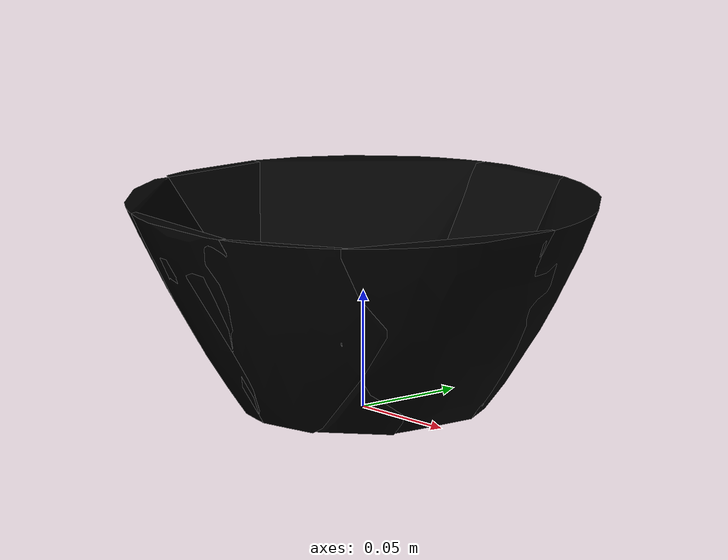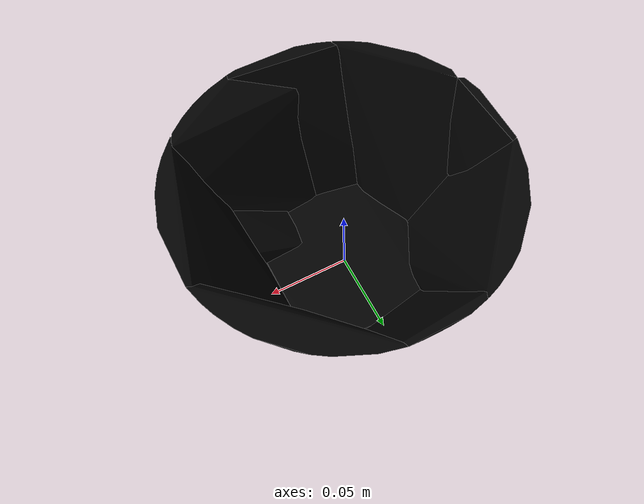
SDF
<?xml version='1.0' encoding='UTF-8'?>
<sdf version="1.7">
  <model name="bowl_coarse">
    <link name="body">
      <inertial>
        <pose>0 0 0 0 0 0</pose>
        <mass>1</mass>
        <inertia>
          <ixx>0.0037258139</ixx>
          <iyy>0.0038460768</iyy>
          <izz>0.0056701178</izz>
          <ixy>-1.6296673e-06</ixy>
          <ixz>1.0541883e-05</ixz>
          <iyz>-8.1805622e-07</iyz>
        </inertia>
      </inertial>
      <visual name="convex_0">
        <pose>0 0 0 0 0 0</pose>
        <geometry>
          <mesh>
            <uri>bowl_coarse_convex_0.obj</uri>
          </mesh>
        </geometry>
        <material>
          <diffuse>0 0 0 1</diffuse>
        </material>
      </visual>
      <collision name="convex_0_volume">
        <pose>0 0 0 0 0 0</pose>
        <geometry>
          <mesh>
            <uri>bowl_coarse_convex_0.obj</uri>
          </mesh>
        </geometry>
        <drake:proximity_properties xmlns:drake="uri:drake">
          <drake:compliant_hydroelastic/>
          <drake:hydroelastic_modulus> 3.0e7 </drake:hydroelastic_modulus>
          <drake:mesh_resolution_hint> 0.18 </drake:mesh_resolution_hint>
          <drake:hunt_crossley_dissipation>10</drake:hunt_crossley_dissipation>
          <drake:mu_dynamic>0.3</drake:mu_dynamic>
        </drake:proximity_properties>
      </collision>
      <visual name="convex_1">
        <pose>0 0 0 0 0 0</pose>
        <geometry>
          <mesh>
            <uri>bowl_coarse_convex_1.obj</uri>
          </mesh>
        </geometry>
        <material>
          <diffuse>0 0 0 1</diffuse>
        </material>
      </visual>
      <collision name="convex_1_volume">
        <pose>0 0 0 0 0 0</pose>
        <geometry>
          <mesh>
            <uri>bowl_coarse_convex_1.obj</uri>
          </mesh>
        </geometry>
        <drake:proximity_properties xmlns:drake="uri:drake">
          <drake:compliant_hydroelastic/>
          <drake:hydroelastic_modulus> 3.0e7 </drake:hydroelastic_modulus>
          <drake:mesh_resolution_hint> 0.18 </drake:mesh_resolution_hint>
          <drake:hunt_crossley_dissipation>10</drake:hunt_crossley_dissipation>
          <drake:mu_dynamic>0.3</drake:mu_dynamic>
        </drake:proximity_properties>
      </collision>
      <visual name="convex_2">
        <pose>0 0 0 0 0 0</pose>
        <geometry>
          <mesh>
            <uri>bowl_coarse_convex_2.obj</uri>
          </mesh>
        </geometry>
        <material>
          <diffuse>0 0 0 1</diffuse>
        </material>
      </visual>
      <collision name="convex_2_volume">
        <pose>0 0 0 0 0 0</pose>
        <geometry>
          <mesh>
            <uri>bowl_coarse_convex_2.obj</uri>
          </mesh>
        </geometry>
        <drake:proximity_properties xmlns:drake="uri:drake">
          <drake:compliant_hydroelastic/>
          <drake:hydroelastic_modulus> 3.0e7 </drake:hydroelastic_modulus>
          <drake:mesh_resolution_hint> 0.18 </drake:mesh_resolution_hint>
          <drake:hunt_crossley_dissipation>10</drake:hunt_crossley_dissipation>
          <drake:mu_dynamic>0.3</drake:mu_dynamic>
        </drake:proximity_properties>
      </collision>
      <visual name="convex_3">
        <pose>0 0 0 0 0 0</pose>
        <geometry>
          <mesh>
            <uri>bowl_coarse_convex_3.obj</uri>
          </mesh>
        </geometry>
        <material>
          <diffuse>0 0 0 1</diffuse>
        </material>
      </visual>
      <collision name="convex_3_volume">
        <pose>0 0 0 0 0 0</pose>
        <geometry>
          <mesh>
            <uri>bowl_coarse_convex_3.obj</uri>
          </mesh>
        </geometry>
        <drake:proximity_properties xmlns:drake="uri:drake">
          <drake:compliant_hydroelastic/>
          <drake:hydroelastic_modulus> 3.0e7 </drake:hydroelastic_modulus>
          <drake:mesh_resolution_hint> 0.18 </drake:mesh_resolution_hint>
          <drake:hunt_crossley_dissipation>10</drake:hunt_crossley_dissipation>
          <drake:mu_dynamic>0.3</drake:mu_dynamic>
        </drake:proximity_properties>
      </collision>
      <visual name="convex_4">
        <pose>0 0 0 0 0 0</pose>
        <geometry>
          <mesh>
            <uri>bowl_coarse_convex_4.obj</uri>
          </mesh>
        </geometry>
        <material>
          <diffuse>0 0 0 1</diffuse>
        </material>
      </visual>
      <collision name="convex_4_volume">
        <pose>0 0 0 0 0 0</pose>
        <geometry>
          <mesh>
            <uri>bowl_coarse_convex_4.obj</uri>
          </mesh>
        </geometry>
        <drake:proximity_properties xmlns:drake="uri:drake">
          <drake:compliant_hydroelastic/>
          <drake:hydroelastic_modulus> 3.0e7 </drake:hydroelastic_modulus>
          <drake:mesh_resolution_hint> 0.18 </drake:mesh_resolution_hint>
          <drake:hunt_crossley_dissipation>10</drake:hunt_crossley_dissipation>
          <drake:mu_dynamic>0.3</drake:mu_dynamic>
        </drake:proximity_properties>
      </collision>
      <visual name="convex_5">
        <pose>0 0 0 0 0 0</pose>
        <geometry>
          <mesh>
            <uri>bowl_coarse_convex_5.obj</uri>
          </mesh>
        </geometry>
        <material>
          <diffuse>0 0 0 1</diffuse>
        </material>
      </visual>
      <collision name="convex_5_volume">
        <pose>0 0 0 0 0 0</pose>
        <geometry>
          <mesh>
            <uri>bowl_coarse_convex_5.obj</uri>
          </mesh>
        </geometry>
        <drake:proximity_properties xmlns:drake="uri:drake">
          <drake:compliant_hydroelastic/>
          <drake:hydroelastic_modulus> 3.0e7 </drake:hydroelastic_modulus>
          <drake:mesh_resolution_hint> 0.18 </drake:mesh_resolution_hint>
          <drake:hunt_crossley_dissipation>10</drake:hunt_crossley_dissipation>
          <drake:mu_dynamic>0.3</drake:mu_dynamic>
        </drake:proximity_properties>
      </collision>
      <visual name="convex_6">
        <pose>0 0 0 0 0 0</pose>
        <geometry>
          <mesh>
            <uri>bowl_coarse_convex_6.obj</uri>
          </mesh>
        </geometry>
        <material>
          <diffuse>0 0 0 1</diffuse>
        </material>
      </visual>
      <collision name="convex_6_volume">
        <pose>0 0 0 0 0 0</pose>
        <geometry>
          <mesh>
            <uri>bowl_coarse_convex_6.obj</uri>
          </mesh>
        </geometry>
        <drake:proximity_properties xmlns:drake="uri:drake">
          <drake:compliant_hydroelastic/>
          <drake:hydroelastic_modulus> 3.0e7 </drake:hydroelastic_modulus>
          <drake:mesh_resolution_hint> 0.18 </drake:mesh_resolution_hint>
          <drake:hunt_crossley_dissipation>10</drake:hunt_crossley_dissipation>
          <drake:mu_dynamic>0.3</drake:mu_dynamic>
        </drake:proximity_properties>
      </collision>
      <visual name="convex_7">
        <pose>0 0 0 0 0 0</pose>
        <geometry>
          <mesh>
            <uri>bowl_coarse_convex_7.obj</uri>
          </mesh>
        </geometry>
        <material>
          <diffuse>0 0 0 1</diffuse>
        </material>
      </visual>
      <collision name="convex_7_volume">
        <pose>0 0 0 0 0 0</pose>
        <geometry>
          <mesh>
            <uri>bowl_coarse_convex_7.obj</uri>
          </mesh>
        </geometry>
        <drake:proximity_properties xmlns:drake="uri:drake">
          <drake:compliant_hydroelastic/>
          <drake:hydroelastic_modulus> 3.0e7 </drake:hydroelastic_modulus>
          <drake:mesh_resolution_hint> 0.18 </drake:mesh_resolution_hint>
          <drake:hunt_crossley_dissipation>10</drake:hunt_crossley_dissipation>
          <drake:mu_dynamic>0.3</drake:mu_dynamic>
        </drake:proximity_properties>
      </collision>
      <visual name="convex_8">
        <pose>0 0 0 0 0 0</pose>
        <geometry>
          <mesh>
            <uri>bowl_coarse_convex_8.obj</uri>
          </mesh>
        </geometry>
        <material>
          <diffuse>0 0 0 1</diffuse>
        </material>
      </visual>
      <collision name="convex_8_volume">
        <pose>0 0 0 0 0 0</pose>
        <geometry>
          <mesh>
            <uri>bowl_coarse_convex_8.obj</uri>
          </mesh>
        </geometry>
        <drake:proximity_properties xmlns:drake="uri:drake">
          <drake:compliant_hydroelastic/>
          <drake:hydroelastic_modulus> 3.0e7 </drake:hydroelastic_modulus>
          <drake:mesh_resolution_hint> 0.18 </drake:mesh_resolution_hint>
          <drake:hunt_crossley_dissipation>10</drake:hunt_crossley_dissipation>
          <drake:mu_dynamic>0.3</drake:mu_dynamic>
        </drake:proximity_properties>
      </collision>
      <visual name="convex_9">
        <pose>0 0 0 0 0 0</pose>
        <geometry>
          <mesh>
            <uri>bowl_coarse_convex_9.obj</uri>
          </mesh>
        </geometry>
        <material>
          <diffuse>0 0 0 1</diffuse>
        </material>
      </visual>
      <collision name="convex_9_volume">
        <pose>0 0 0 0 0 0</pose>
        <geometry>
          <mesh>
            <uri>bowl_coarse_convex_9.obj</uri>
          </mesh>
        </geometry>
        <drake:proximity_properties xmlns:drake="uri:drake">
          <drake:compliant_hydroelastic/>
          <drake:hydroelastic_modulus> 3.0e7 </drake:hydroelastic_modulus>
          <drake:mesh_resolution_hint> 0.18 </drake:mesh_resolution_hint>
          <drake:hunt_crossley_dissipation>10</drake:hunt_crossley_dissipation>
          <drake:mu_dynamic>0.3</drake:mu_dynamic>
        </drake:proximity_properties>
      </collision>
    </link>
  </model>
</sdf>
